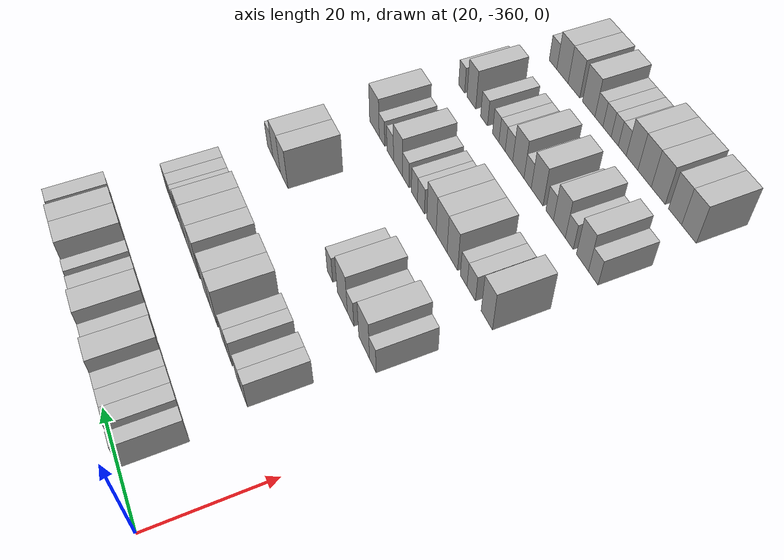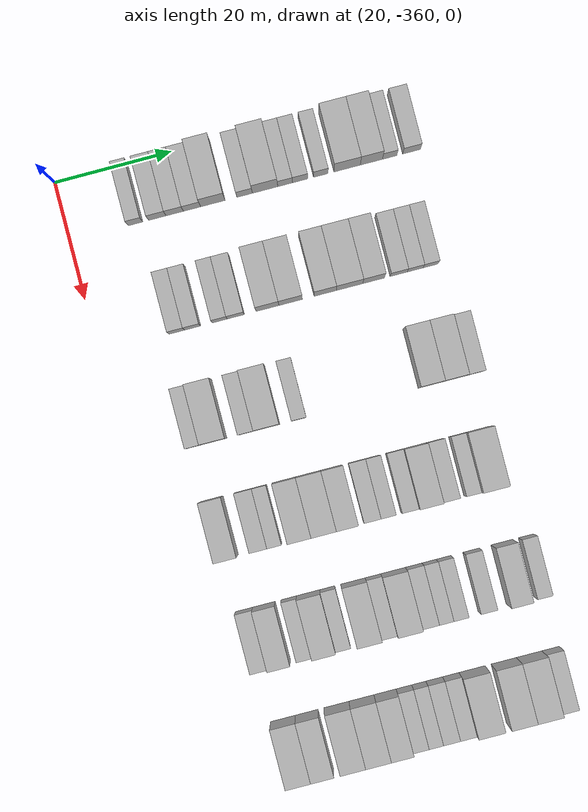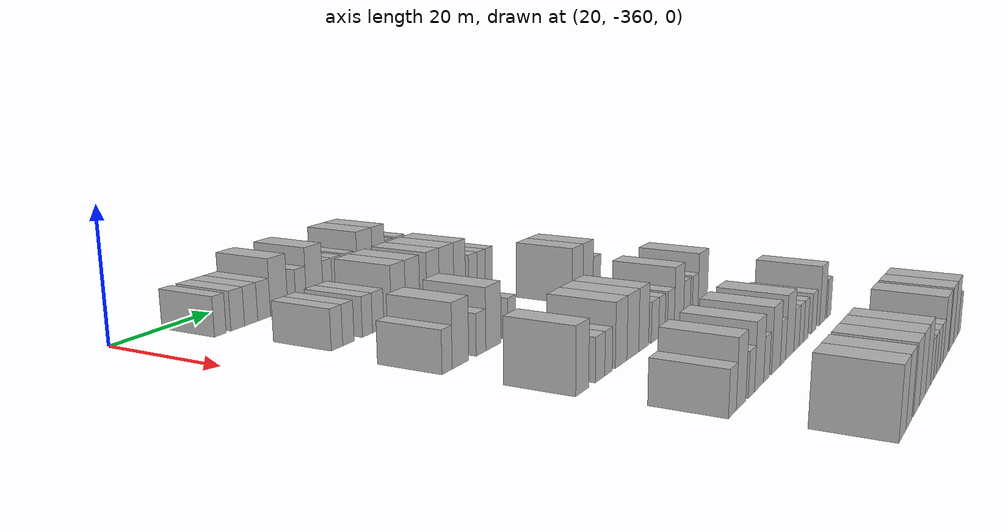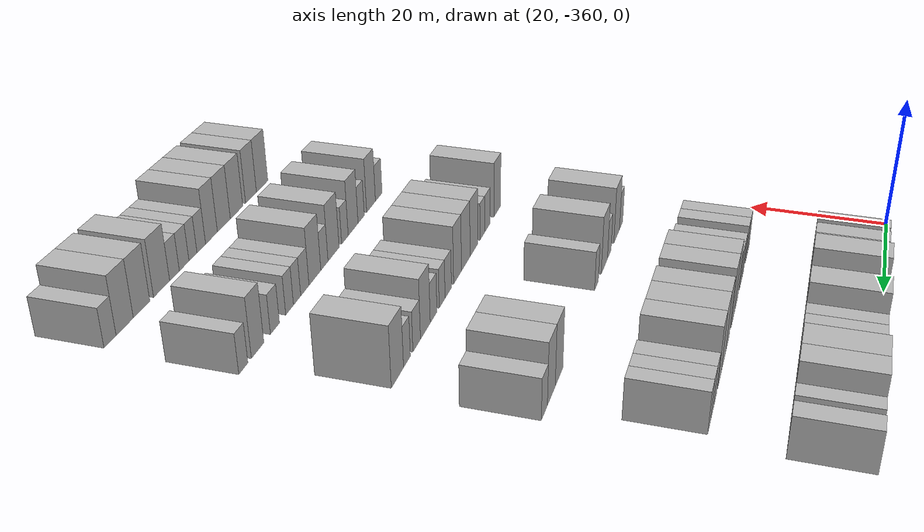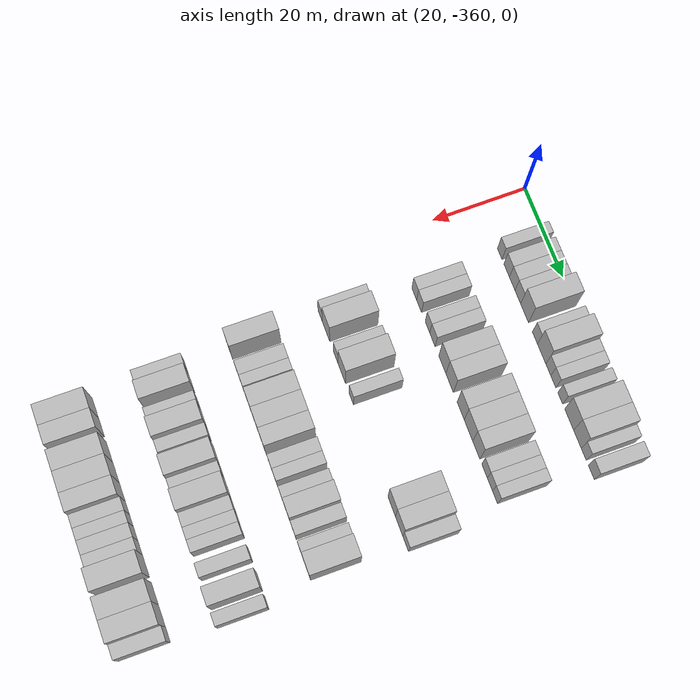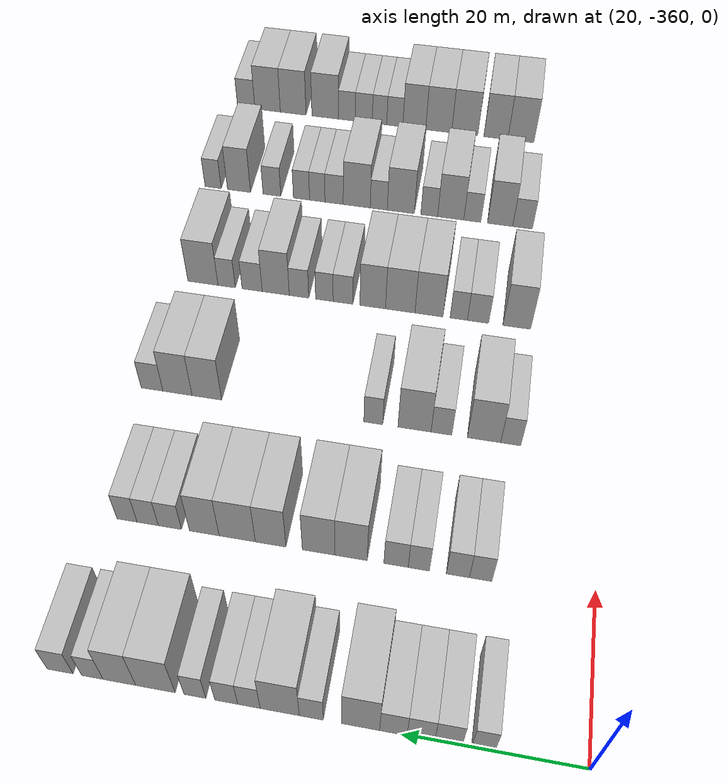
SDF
<sdf version="1.6">
 <world name="default">
  <model name="building_1">
   <static>1</static>
   <pose>25.0000 -348.7660 0 0.000000 0.000000 0.000000</pose>
   <link name="link">
    <pose>0 0 3.00 0 0 0</pose>
    <collision name="collision"><geometry><box><size>10.0000 2.4679 6.0000</size></box></geometry></collision>
    <visual name="visual">
     <cast_shadows>0</cast_shadows>
     <geometry><box><size>10.0000 2.4679 6.0000</size></box></geometry>
     <material>
      <script>
       <uri>model://HANNAS_wall/materials/scripts</uri>
       <uri>model://HANNAS_wall/materials/textures</uri>
       <name>vrc/HANNAS_wall</name>
      </script>
     </material>
    </visual>
   </link>
  </model>
  <model name="building_2">
   <static>1</static>
   <pose>25.0000 -345.0527 0 0.000000 0.000000 0.000000</pose>
   <link name="link">
    <pose>0 0 3.00 0 0 0</pose>
    <collision name="collision"><geometry><box><size>10.0000 2.9588 6.0000</size></box></geometry></collision>
    <visual name="visual">
     <cast_shadows>0</cast_shadows>
     <geometry><box><size>10.0000 2.9588 6.0000</size></box></geometry>
     <material>
      <script>
       <uri>model://HANNAS_wall/materials/scripts</uri>
       <uri>model://HANNAS_wall/materials/textures</uri>
       <name>vrc/HANNAS_wall</name>
      </script>
     </material>
    </visual>
   </link>
  </model>
  <model name="building_3">
   <static>1</static>
   <pose>25.0000 -342.0902 0 0.000000 0.000000 0.000000</pose>
   <link name="link">
    <pose>0 0 3.00 0 0 0</pose>
    <collision name="collision"><geometry><box><size>10.0000 2.9660 6.0000</size></box></geometry></collision>
    <visual name="visual">
     <cast_shadows>0</cast_shadows>
     <geometry><box><size>10.0000 2.9660 6.0000</size></box></geometry>
     <material>
      <script>
       <uri>model://HANNAS_wall/materials/scripts</uri>
       <uri>model://HANNAS_wall/materials/textures</uri>
       <name>vrc/HANNAS_wall</name>
      </script>
     </material>
    </visual>
   </link>
  </model>
  <model name="building_4">
   <static>1</static>
   <pose>25.0000 -339.1338 0 0.000000 0.000000 0.000000</pose>
   <link name="link">
    <pose>0 0 3.00 0 0 0</pose>
    <collision name="collision"><geometry><box><size>10.0000 2.9469 6.0000</size></box></geometry></collision>
    <visual name="visual">
     <cast_shadows>0</cast_shadows>
     <geometry><box><size>10.0000 2.9469 6.0000</size></box></geometry>
     <material>
      <script>
       <uri>model://HANNAS_wall/materials/scripts</uri>
       <uri>model://HANNAS_wall/materials/textures</uri>
       <name>vrc/HANNAS_wall</name>
      </script>
     </material>
    </visual>
   </link>
  </model>
  <model name="building_5">
   <static>1</static>
   <pose>25.0000 -335.5898 0 0.000000 0.000000 0.000000</pose>
   <link name="link">
    <pose>0 0 4.50 0 0 0</pose>
    <collision name="collision"><geometry><box><size>10.0000 4.1409 9.0000</size></box></geometry></collision>
    <visual name="visual">
     <cast_shadows>0</cast_shadows>
     <geometry><box><size>10.0000 4.1409 9.0000</size></box></geometry>
     <material>
      <script>
       <uri>model://HANNAS_wall/materials/scripts</uri>
       <uri>model://HANNAS_wall/materials/textures</uri>
       <name>vrc/HANNAS_wall</name>
      </script>
     </material>
    </visual>
   </link>
  </model>
  <model name="building_6">
   <static>1</static>
   <pose>25.0000 -330.1965 0 0.000000 0.000000 0.000000</pose>
   <link name="link">
    <pose>0 0 3.00 0 0 0</pose>
    <collision name="collision"><geometry><box><size>10.0000 2.6458 6.0000</size></box></geometry></collision>
    <visual name="visual">
     <cast_shadows>0</cast_shadows>
     <geometry><box><size>10.0000 2.6458 6.0000</size></box></geometry>
     <material>
      <script>
       <uri>model://HANNAS_wall/materials/scripts</uri>
       <uri>model://HANNAS_wall/materials/textures</uri>
       <name>vrc/HANNAS_wall</name>
      </script>
     </material>
    </visual>
   </link>
  </model>
  <model name="building_7">
   <static>1</static>
   <pose>25.0000 -326.7133 0 0.000000 0.000000 0.000000</pose>
   <link name="link">
    <pose>0 0 4.50 0 0 0</pose>
    <collision name="collision"><geometry><box><size>10.0000 4.3205 9.0000</size></box></geometry></collision>
    <visual name="visual">
     <cast_shadows>0</cast_shadows>
     <geometry><box><size>10.0000 4.3205 9.0000</size></box></geometry>
     <material>
      <script>
       <uri>model://HANNAS_wall/materials/scripts</uri>
       <uri>model://HANNAS_wall/materials/textures</uri>
       <name>vrc/HANNAS_wall</name>
      </script>
     </material>
    </visual>
   </link>
  </model>
  <model name="building_8">
   <static>1</static>
   <pose>25.0000 -323.3036 0 0.000000 0.000000 0.000000</pose>
   <link name="link">
    <pose>0 0 3.00 0 0 0</pose>
    <collision name="collision"><geometry><box><size>10.0000 2.4989 6.0000</size></box></geometry></collision>
    <visual name="visual">
     <cast_shadows>0</cast_shadows>
     <geometry><box><size>10.0000 2.4989 6.0000</size></box></geometry>
     <material>
      <script>
       <uri>model://HANNAS_wall/materials/scripts</uri>
       <uri>model://HANNAS_wall/materials/textures</uri>
       <name>vrc/HANNAS_wall</name>
      </script>
     </material>
    </visual>
   </link>
  </model>
  <model name="building_9">
   <static>1</static>
   <pose>25.0000 -320.7672 0 0.000000 0.000000 0.000000</pose>
   <link name="link">
    <pose>0 0 3.00 0 0 0</pose>
    <collision name="collision"><geometry><box><size>10.0000 2.5739 6.0000</size></box></geometry></collision>
    <visual name="visual">
     <cast_shadows>0</cast_shadows>
     <geometry><box><size>10.0000 2.5739 6.0000</size></box></geometry>
     <material>
      <script>
       <uri>model://HANNAS_wall/materials/scripts</uri>
       <uri>model://HANNAS_wall/materials/textures</uri>
       <name>vrc/HANNAS_wall</name>
      </script>
     </material>
    </visual>
   </link>
  </model>
  <model name="building_10">
   <static>1</static>
   <pose>25.0000 -317.2470 0 0.000000 0.000000 0.000000</pose>
   <link name="link">
    <pose>0 0 3.00 0 0 0</pose>
    <collision name="collision"><geometry><box><size>10.0000 2.4664 6.0000</size></box></geometry></collision>
    <visual name="visual">
     <cast_shadows>0</cast_shadows>
     <geometry><box><size>10.0000 2.4664 6.0000</size></box></geometry>
     <material>
      <script>
       <uri>model://HANNAS_wall/materials/scripts</uri>
       <uri>model://HANNAS_wall/materials/textures</uri>
       <name>vrc/HANNAS_wall</name>
      </script>
     </material>
    </visual>
   </link>
  </model>
  <model name="building_11">
   <static>1</static>
   <pose>25.0000 -312.7702 0 0.000000 0.000000 0.000000</pose>
   <link name="link">
    <pose>0 0 4.50 0 0 0</pose>
    <collision name="collision"><geometry><box><size>10.0000 4.4872 9.0000</size></box></geometry></collision>
    <visual name="visual">
     <cast_shadows>0</cast_shadows>
     <geometry><box><size>10.0000 4.4872 9.0000</size></box></geometry>
     <material>
      <script>
       <uri>model://HANNAS_wall/materials/scripts</uri>
       <uri>model://HANNAS_wall/materials/textures</uri>
       <name>vrc/HANNAS_wall</name>
      </script>
     </material>
    </visual>
   </link>
  </model>
  <model name="building_12">
   <static>1</static>
   <pose>25.0000 -308.6517 0 0.000000 0.000000 0.000000</pose>
   <link name="link">
    <pose>0 0 4.50 0 0 0</pose>
    <collision name="collision"><geometry><box><size>10.0000 3.7497 9.0000</size></box></geometry></collision>
    <visual name="visual">
     <cast_shadows>0</cast_shadows>
     <geometry><box><size>10.0000 3.7497 9.0000</size></box></geometry>
     <material>
      <script>
       <uri>model://HANNAS_wall/materials/scripts</uri>
       <uri>model://HANNAS_wall/materials/textures</uri>
       <name>vrc/HANNAS_wall</name>
      </script>
     </material>
    </visual>
   </link>
  </model>
  <model name="building_13">
   <static>1</static>
   <pose>25.0000 -305.5434 0 0.000000 0.000000 0.000000</pose>
   <link name="link">
    <pose>0 0 3.00 0 0 0</pose>
    <collision name="collision"><geometry><box><size>10.0000 2.4669 6.0000</size></box></geometry></collision>
    <visual name="visual">
     <cast_shadows>0</cast_shadows>
     <geometry><box><size>10.0000 2.4669 6.0000</size></box></geometry>
     <material>
      <script>
       <uri>model://HANNAS_wall/materials/scripts</uri>
       <uri>model://HANNAS_wall/materials/textures</uri>
       <name>vrc/HANNAS_wall</name>
      </script>
     </material>
    </visual>
   </link>
  </model>
  <model name="building_14">
   <static>1</static>
   <pose>25.0000 -301.8110 0 0.000000 0.000000 0.000000</pose>
   <link name="link">
    <pose>0 0 3.00 0 0 0</pose>
    <collision name="collision"><geometry><box><size>10.0000 2.9979 6.0000</size></box></geometry></collision>
    <visual name="visual">
     <cast_shadows>0</cast_shadows>
     <geometry><box><size>10.0000 2.9979 6.0000</size></box></geometry>
     <material>
      <script>
       <uri>model://HANNAS_wall/materials/scripts</uri>
       <uri>model://HANNAS_wall/materials/textures</uri>
       <name>vrc/HANNAS_wall</name>
      </script>
     </material>
    </visual>
   </link>
  </model>
  <model name="building_178">
   <static>1</static>
   <pose>44.0000 -346.6772 0 0.000000 0.000000 0.000000</pose>
   <link name="link">
    <pose>0 0 3.00 0 0 0</pose>
    <collision name="collision"><geometry><box><size>10.0000 2.6455 6.0000</size></box></geometry></collision>
    <visual name="visual">
     <cast_shadows>0</cast_shadows>
     <geometry><box><size>10.0000 2.6455 6.0000</size></box></geometry>
     <material>
      <script>
       <uri>model://HANNAS_wall/materials/scripts</uri>
       <uri>model://HANNAS_wall/materials/textures</uri>
       <name>vrc/HANNAS_wall</name>
      </script>
     </material>
    </visual>
   </link>
  </model>
  <model name="building_179">
   <static>1</static>
   <pose>44.0000 -343.9953 0 0.000000 0.000000 0.000000</pose>
   <link name="link">
    <pose>0 0 3.00 0 0 0</pose>
    <collision name="collision"><geometry><box><size>10.0000 2.7182 6.0000</size></box></geometry></collision>
    <visual name="visual">
     <cast_shadows>0</cast_shadows>
     <geometry><box><size>10.0000 2.7182 6.0000</size></box></geometry>
     <material>
      <script>
       <uri>model://HANNAS_wall/materials/scripts</uri>
       <uri>model://HANNAS_wall/materials/textures</uri>
       <name>vrc/HANNAS_wall</name>
      </script>
     </material>
    </visual>
   </link>
  </model>
  <model name="building_180">
   <static>1</static>
   <pose>44.0000 -339.3690 0 0.000000 0.000000 0.000000</pose>
   <link name="link">
    <pose>0 0 3.00 0 0 0</pose>
    <collision name="collision"><geometry><box><size>10.0000 2.5345 6.0000</size></box></geometry></collision>
    <visual name="visual">
     <cast_shadows>0</cast_shadows>
     <geometry><box><size>10.0000 2.5345 6.0000</size></box></geometry>
     <material>
      <script>
       <uri>model://HANNAS_wall/materials/scripts</uri>
       <uri>model://HANNAS_wall/materials/textures</uri>
       <name>vrc/HANNAS_wall</name>
      </script>
     </material>
    </visual>
   </link>
  </model>
  <model name="building_181">
   <static>1</static>
   <pose>44.0000 -336.6489 0 0.000000 0.000000 0.000000</pose>
   <link name="link">
    <pose>0 0 3.00 0 0 0</pose>
    <collision name="collision"><geometry><box><size>10.0000 2.9058 6.0000</size></box></geometry></collision>
    <visual name="visual">
     <cast_shadows>0</cast_shadows>
     <geometry><box><size>10.0000 2.9058 6.0000</size></box></geometry>
     <material>
      <script>
       <uri>model://HANNAS_wall/materials/scripts</uri>
       <uri>model://HANNAS_wall/materials/textures</uri>
       <name>vrc/HANNAS_wall</name>
      </script>
     </material>
    </visual>
   </link>
  </model>
  <model name="building_182">
   <static>1</static>
   <pose>44.0000 -331.2538 0 0.000000 0.000000 0.000000</pose>
   <link name="link">
    <pose>0 0 4.50 0 0 0</pose>
    <collision name="collision"><geometry><box><size>10.0000 3.8844 9.0000</size></box></geometry></collision>
    <visual name="visual">
     <cast_shadows>0</cast_shadows>
     <geometry><box><size>10.0000 3.8844 9.0000</size></box></geometry>
     <material>
      <script>
       <uri>model://HANNAS_wall/materials/scripts</uri>
       <uri>model://HANNAS_wall/materials/textures</uri>
       <name>vrc/HANNAS_wall</name>
      </script>
     </material>
    </visual>
   </link>
  </model>
  <model name="building_183">
   <static>1</static>
   <pose>44.0000 -327.3284 0 0.000000 0.000000 0.000000</pose>
   <link name="link">
    <pose>0 0 4.50 0 0 0</pose>
    <collision name="collision"><geometry><box><size>10.0000 3.9663 9.0000</size></box></geometry></collision>
    <visual name="visual">
     <cast_shadows>0</cast_shadows>
     <geometry><box><size>10.0000 3.9663 9.0000</size></box></geometry>
     <material>
      <script>
       <uri>model://HANNAS_wall/materials/scripts</uri>
       <uri>model://HANNAS_wall/materials/textures</uri>
       <name>vrc/HANNAS_wall</name>
      </script>
     </material>
    </visual>
   </link>
  </model>
  <model name="building_184">
   <static>1</static>
   <pose>44.0000 -321.4629 0 0.000000 0.000000 0.000000</pose>
   <link name="link">
    <pose>0 0 4.50 0 0 0</pose>
    <collision name="collision"><geometry><box><size>10.0000 3.7648 9.0000</size></box></geometry></collision>
    <visual name="visual">
     <cast_shadows>0</cast_shadows>
     <geometry><box><size>10.0000 3.7648 9.0000</size></box></geometry>
     <material>
      <script>
       <uri>model://HANNAS_wall/materials/scripts</uri>
       <uri>model://HANNAS_wall/materials/textures</uri>
       <name>vrc/HANNAS_wall</name>
      </script>
     </material>
    </visual>
   </link>
  </model>
  <model name="building_185">
   <static>1</static>
   <pose>44.0000 -317.3448 0 0.000000 0.000000 0.000000</pose>
   <link name="link">
    <pose>0 0 4.50 0 0 0</pose>
    <collision name="collision"><geometry><box><size>10.0000 4.4713 9.0000</size></box></geometry></collision>
    <visual name="visual">
     <cast_shadows>0</cast_shadows>
     <geometry><box><size>10.0000 4.4713 9.0000</size></box></geometry>
     <material>
      <script>
       <uri>model://HANNAS_wall/materials/scripts</uri>
       <uri>model://HANNAS_wall/materials/textures</uri>
       <name>vrc/HANNAS_wall</name>
      </script>
     </material>
    </visual>
   </link>
  </model>
  <model name="building_186">
   <static>1</static>
   <pose>44.0000 -313.2630 0 0.000000 0.000000 0.000000</pose>
   <link name="link">
    <pose>0 0 4.50 0 0 0</pose>
    <collision name="collision"><geometry><box><size>10.0000 3.6924 9.0000</size></box></geometry></collision>
    <visual name="visual">
     <cast_shadows>0</cast_shadows>
     <geometry><box><size>10.0000 3.6924 9.0000</size></box></geometry>
     <material>
      <script>
       <uri>model://HANNAS_wall/materials/scripts</uri>
       <uri>model://HANNAS_wall/materials/textures</uri>
       <name>vrc/HANNAS_wall</name>
      </script>
     </material>
    </visual>
   </link>
  </model>
  <model name="building_187">
   <static>1</static>
   <pose>44.0000 -308.9660 0 0.000000 0.000000 0.000000</pose>
   <link name="link">
    <pose>0 0 3.00 0 0 0</pose>
    <collision name="collision"><geometry><box><size>10.0000 2.9017 6.0000</size></box></geometry></collision>
    <visual name="visual">
     <cast_shadows>0</cast_shadows>
     <geometry><box><size>10.0000 2.9017 6.0000</size></box></geometry>
     <material>
      <script>
       <uri>model://HANNAS_wall/materials/scripts</uri>
       <uri>model://HANNAS_wall/materials/textures</uri>
       <name>vrc/HANNAS_wall</name>
      </script>
     </material>
    </visual>
   </link>
  </model>
  <model name="building_188">
   <static>1</static>
   <pose>44.0000 -306.1753 0 0.000000 0.000000 0.000000</pose>
   <link name="link">
    <pose>0 0 3.00 0 0 0</pose>
    <collision name="collision"><geometry><box><size>10.0000 2.6796 6.0000</size></box></geometry></collision>
    <visual name="visual">
     <cast_shadows>0</cast_shadows>
     <geometry><box><size>10.0000 2.6796 6.0000</size></box></geometry>
     <material>
      <script>
       <uri>model://HANNAS_wall/materials/scripts</uri>
       <uri>model://HANNAS_wall/materials/textures</uri>
       <name>vrc/HANNAS_wall</name>
      </script>
     </material>
    </visual>
   </link>
  </model>
  <model name="building_189">
   <static>1</static>
   <pose>44.0000 -303.5595 0 0.000000 0.000000 0.000000</pose>
   <link name="link">
    <pose>0 0 3.00 0 0 0</pose>
    <collision name="collision"><geometry><box><size>10.0000 2.5520 6.0000</size></box></geometry></collision>
    <visual name="visual">
     <cast_shadows>0</cast_shadows>
     <geometry><box><size>10.0000 2.5520 6.0000</size></box></geometry>
     <material>
      <script>
       <uri>model://HANNAS_wall/materials/scripts</uri>
       <uri>model://HANNAS_wall/materials/textures</uri>
       <name>vrc/HANNAS_wall</name>
      </script>
     </material>
    </visual>
   </link>
  </model>
  <model name="building_346">
   <static>1</static>
   <pose>63.0000 -348.7153 0 0.000000 0.000000 0.000000</pose>
   <link name="link">
    <pose>0 0 3.00 0 0 0</pose>
    <collision name="collision"><geometry><box><size>10.0000 2.5694 6.0000</size></box></geometry></collision>
    <visual name="visual">
     <cast_shadows>0</cast_shadows>
     <geometry><box><size>10.0000 2.5694 6.0000</size></box></geometry>
     <material>
      <script>
       <uri>model://HANNAS_wall/materials/scripts</uri>
       <uri>model://HANNAS_wall/materials/textures</uri>
       <name>vrc/HANNAS_wall</name>
      </script>
     </material>
    </visual>
   </link>
  </model>
  <model name="building_347">
   <static>1</static>
   <pose>63.0000 -345.2853 0 0.000000 0.000000 0.000000</pose>
   <link name="link">
    <pose>0 0 4.50 0 0 0</pose>
    <collision name="collision"><geometry><box><size>10.0000 4.2904 9.0000</size></box></geometry></collision>
    <visual name="visual">
     <cast_shadows>0</cast_shadows>
     <geometry><box><size>10.0000 4.2904 9.0000</size></box></geometry>
     <material>
      <script>
       <uri>model://HANNAS_wall/materials/scripts</uri>
       <uri>model://HANNAS_wall/materials/textures</uri>
       <name>vrc/HANNAS_wall</name>
      </script>
     </material>
    </visual>
   </link>
  </model>
  <model name="building_348">
   <static>1</static>
   <pose>63.0000 -339.7916 0 0.000000 0.000000 0.000000</pose>
   <link name="link">
    <pose>0 0 3.00 0 0 0</pose>
    <collision name="collision"><geometry><box><size>10.0000 2.6970 6.0000</size></box></geometry></collision>
    <visual name="visual">
     <cast_shadows>0</cast_shadows>
     <geometry><box><size>10.0000 2.6970 6.0000</size></box></geometry>
     <material>
      <script>
       <uri>model://HANNAS_wall/materials/scripts</uri>
       <uri>model://HANNAS_wall/materials/textures</uri>
       <name>vrc/HANNAS_wall</name>
      </script>
     </material>
    </visual>
   </link>
  </model>
  <model name="building_349">
   <static>1</static>
   <pose>63.0000 -336.2821 0 0.000000 0.000000 0.000000</pose>
   <link name="link">
    <pose>0 0 4.50 0 0 0</pose>
    <collision name="collision"><geometry><box><size>10.0000 4.3220 9.0000</size></box></geometry></collision>
    <visual name="visual">
     <cast_shadows>0</cast_shadows>
     <geometry><box><size>10.0000 4.3220 9.0000</size></box></geometry>
     <material>
      <script>
       <uri>model://HANNAS_wall/materials/scripts</uri>
       <uri>model://HANNAS_wall/materials/textures</uri>
       <name>vrc/HANNAS_wall</name>
      </script>
     </material>
    </visual>
   </link>
  </model>
  <model name="building_350">
   <static>1</static>
   <pose>63.0000 -330.8788 0 0.000000 0.000000 0.000000</pose>
   <link name="link">
    <pose>0 0 3.00 0 0 0</pose>
    <collision name="collision"><geometry><box><size>10.0000 2.4847 6.0000</size></box></geometry></collision>
    <visual name="visual">
     <cast_shadows>0</cast_shadows>
     <geometry><box><size>10.0000 2.4847 6.0000</size></box></geometry>
     <material>
      <script>
       <uri>model://HANNAS_wall/materials/scripts</uri>
       <uri>model://HANNAS_wall/materials/textures</uri>
       <name>vrc/HANNAS_wall</name>
      </script>
     </material>
    </visual>
   </link>
  </model>
  <model name="building_351">
   <static>1</static>
   <pose>63.0000 -308.5785 0 0.000000 0.000000 0.000000</pose>
   <link name="link">
    <pose>0 0 4.50 0 0 0</pose>
    <collision name="collision"><geometry><box><size>10.0000 4.0386 9.0000</size></box></geometry></collision>
    <visual name="visual">
     <cast_shadows>0</cast_shadows>
     <geometry><box><size>10.0000 4.0386 9.0000</size></box></geometry>
     <material>
      <script>
       <uri>model://HANNAS_wall/materials/scripts</uri>
       <uri>model://HANNAS_wall/materials/textures</uri>
       <name>vrc/HANNAS_wall</name>
      </script>
     </material>
    </visual>
   </link>
  </model>
  <model name="building_352">
   <static>1</static>
   <pose>63.0000 -304.5586 0 0.000000 0.000000 0.000000</pose>
   <link name="link">
    <pose>0 0 4.50 0 0 0</pose>
    <collision name="collision"><geometry><box><size>10.0000 4.0012 9.0000</size></box></geometry></collision>
    <visual name="visual">
     <cast_shadows>0</cast_shadows>
     <geometry><box><size>10.0000 4.0012 9.0000</size></box></geometry>
     <material>
      <script>
       <uri>model://HANNAS_wall/materials/scripts</uri>
       <uri>model://HANNAS_wall/materials/textures</uri>
       <name>vrc/HANNAS_wall</name>
      </script>
     </material>
    </visual>
   </link>
  </model>
  <model name="building_353">
   <static>1</static>
   <pose>63.0000 -301.0593 0 0.000000 0.000000 0.000000</pose>
   <link name="link">
    <pose>0 0 3.00 0 0 0</pose>
    <collision name="collision"><geometry><box><size>10.0000 2.9973 6.0000</size></box></geometry></collision>
    <visual name="visual">
     <cast_shadows>0</cast_shadows>
     <geometry><box><size>10.0000 2.9973 6.0000</size></box></geometry>
     <material>
      <script>
       <uri>model://HANNAS_wall/materials/scripts</uri>
       <uri>model://HANNAS_wall/materials/textures</uri>
       <name>vrc/HANNAS_wall</name>
      </script>
     </material>
    </visual>
   </link>
  </model>
  <model name="building_521">
   <static>1</static>
   <pose>82.0000 -348.0784 0 0.000000 0.000000 0.000000</pose>
   <link name="link">
    <pose>0 0 4.50 0 0 0</pose>
    <collision name="collision"><geometry><box><size>10.0000 3.8432 9.0000</size></box></geometry></collision>
    <visual name="visual">
     <cast_shadows>0</cast_shadows>
     <geometry><box><size>10.0000 3.8432 9.0000</size></box></geometry>
     <material>
      <script>
       <uri>model://HANNAS_wall/materials/scripts</uri>
       <uri>model://HANNAS_wall/materials/textures</uri>
       <name>vrc/HANNAS_wall</name>
      </script>
     </material>
    </visual>
   </link>
  </model>
  <model name="building_522">
   <static>1</static>
   <pose>82.0000 -342.6615 0 0.000000 0.000000 0.000000</pose>
   <link name="link">
    <pose>0 0 3.00 0 0 0</pose>
    <collision name="collision"><geometry><box><size>10.0000 2.9906 6.0000</size></box></geometry></collision>
    <visual name="visual">
     <cast_shadows>0</cast_shadows>
     <geometry><box><size>10.0000 2.9906 6.0000</size></box></geometry>
     <material>
      <script>
       <uri>model://HANNAS_wall/materials/scripts</uri>
       <uri>model://HANNAS_wall/materials/textures</uri>
       <name>vrc/HANNAS_wall</name>
      </script>
     </material>
    </visual>
   </link>
  </model>
  <model name="building_523">
   <static>1</static>
   <pose>82.0000 -339.9555 0 0.000000 0.000000 0.000000</pose>
   <link name="link">
    <pose>0 0 3.00 0 0 0</pose>
    <collision name="collision"><geometry><box><size>10.0000 2.4214 6.0000</size></box></geometry></collision>
    <visual name="visual">
     <cast_shadows>0</cast_shadows>
     <geometry><box><size>10.0000 2.4214 6.0000</size></box></geometry>
     <material>
      <script>
       <uri>model://HANNAS_wall/materials/scripts</uri>
       <uri>model://HANNAS_wall/materials/textures</uri>
       <name>vrc/HANNAS_wall</name>
      </script>
     </material>
    </visual>
   </link>
  </model>
  <model name="building_524">
   <static>1</static>
   <pose>82.0000 -335.7631 0 0.000000 0.000000 0.000000</pose>
   <link name="link">
    <pose>0 0 4.50 0 0 0</pose>
    <collision name="collision"><geometry><box><size>10.0000 3.9634 9.0000</size></box></geometry></collision>
    <visual name="visual">
     <cast_shadows>0</cast_shadows>
     <geometry><box><size>10.0000 3.9634 9.0000</size></box></geometry>
     <material>
      <script>
       <uri>model://HANNAS_wall/materials/scripts</uri>
       <uri>model://HANNAS_wall/materials/textures</uri>
       <name>vrc/HANNAS_wall</name>
      </script>
     </material>
    </visual>
   </link>
  </model>
  <model name="building_525">
   <static>1</static>
   <pose>82.0000 -331.6801 0 0.000000 0.000000 0.000000</pose>
   <link name="link">
    <pose>0 0 4.50 0 0 0</pose>
    <collision name="collision"><geometry><box><size>10.0000 4.2025 9.0000</size></box></geometry></collision>
    <visual name="visual">
     <cast_shadows>0</cast_shadows>
     <geometry><box><size>10.0000 4.2025 9.0000</size></box></geometry>
     <material>
      <script>
       <uri>model://HANNAS_wall/materials/scripts</uri>
       <uri>model://HANNAS_wall/materials/textures</uri>
       <name>vrc/HANNAS_wall</name>
      </script>
     </material>
    </visual>
   </link>
  </model>
  <model name="building_526">
   <static>1</static>
   <pose>82.0000 -327.7458 0 0.000000 0.000000 0.000000</pose>
   <link name="link">
    <pose>0 0 4.50 0 0 0</pose>
    <collision name="collision"><geometry><box><size>10.0000 3.6663 9.0000</size></box></geometry></collision>
    <visual name="visual">
     <cast_shadows>0</cast_shadows>
     <geometry><box><size>10.0000 3.6663 9.0000</size></box></geometry>
     <material>
      <script>
       <uri>model://HANNAS_wall/materials/scripts</uri>
       <uri>model://HANNAS_wall/materials/textures</uri>
       <name>vrc/HANNAS_wall</name>
      </script>
     </material>
    </visual>
   </link>
  </model>
  <model name="building_527">
   <static>1</static>
   <pose>82.0000 -323.4887 0 0.000000 0.000000 0.000000</pose>
   <link name="link">
    <pose>0 0 3.00 0 0 0</pose>
    <collision name="collision"><geometry><box><size>10.0000 2.8479 6.0000</size></box></geometry></collision>
    <visual name="visual">
     <cast_shadows>0</cast_shadows>
     <geometry><box><size>10.0000 2.8479 6.0000</size></box></geometry>
     <material>
      <script>
       <uri>model://HANNAS_wall/materials/scripts</uri>
       <uri>model://HANNAS_wall/materials/textures</uri>
       <name>vrc/HANNAS_wall</name>
      </script>
     </material>
    </visual>
   </link>
  </model>
  <model name="building_528">
   <static>1</static>
   <pose>82.0000 -320.7982 0 0.000000 0.000000 0.000000</pose>
   <link name="link">
    <pose>0 0 3.00 0 0 0</pose>
    <collision name="collision"><geometry><box><size>10.0000 2.5330 6.0000</size></box></geometry></collision>
    <visual name="visual">
     <cast_shadows>0</cast_shadows>
     <geometry><box><size>10.0000 2.5330 6.0000</size></box></geometry>
     <material>
      <script>
       <uri>model://HANNAS_wall/materials/scripts</uri>
       <uri>model://HANNAS_wall/materials/textures</uri>
       <name>vrc/HANNAS_wall</name>
      </script>
     </material>
    </visual>
   </link>
  </model>
  <model name="building_529">
   <static>1</static>
   <pose>82.0000 -317.1169 0 0.000000 0.000000 0.000000</pose>
   <link name="link">
    <pose>0 0 3.00 0 0 0</pose>
    <collision name="collision"><geometry><box><size>10.0000 2.8295 6.0000</size></box></geometry></collision>
    <visual name="visual">
     <cast_shadows>0</cast_shadows>
     <geometry><box><size>10.0000 2.8295 6.0000</size></box></geometry>
     <material>
      <script>
       <uri>model://HANNAS_wall/materials/scripts</uri>
       <uri>model://HANNAS_wall/materials/textures</uri>
       <name>vrc/HANNAS_wall</name>
      </script>
     </material>
    </visual>
   </link>
  </model>
  <model name="building_530">
   <static>1</static>
   <pose>82.0000 -313.7220 0 0.000000 0.000000 0.000000</pose>
   <link name="link">
    <pose>0 0 4.50 0 0 0</pose>
    <collision name="collision"><geometry><box><size>10.0000 3.9603 9.0000</size></box></geometry></collision>
    <visual name="visual">
     <cast_shadows>0</cast_shadows>
     <geometry><box><size>10.0000 3.9603 9.0000</size></box></geometry>
     <material>
      <script>
       <uri>model://HANNAS_wall/materials/scripts</uri>
       <uri>model://HANNAS_wall/materials/textures</uri>
       <name>vrc/HANNAS_wall</name>
      </script>
     </material>
    </visual>
   </link>
  </model>
  <model name="building_531">
   <static>1</static>
   <pose>82.0000 -310.2654 0 0.000000 0.000000 0.000000</pose>
   <link name="link">
    <pose>0 0 3.00 0 0 0</pose>
    <collision name="collision"><geometry><box><size>10.0000 2.9529 6.0000</size></box></geometry></collision>
    <visual name="visual">
     <cast_shadows>0</cast_shadows>
     <geometry><box><size>10.0000 2.9529 6.0000</size></box></geometry>
     <material>
      <script>
       <uri>model://HANNAS_wall/materials/scripts</uri>
       <uri>model://HANNAS_wall/materials/textures</uri>
       <name>vrc/HANNAS_wall</name>
      </script>
     </material>
    </visual>
   </link>
  </model>
  <model name="building_532">
   <static>1</static>
   <pose>82.0000 -306.5099 0 0.000000 0.000000 0.000000</pose>
   <link name="link">
    <pose>0 0 3.00 0 0 0</pose>
    <collision name="collision"><geometry><box><size>10.0000 2.5581 6.0000</size></box></geometry></collision>
    <visual name="visual">
     <cast_shadows>0</cast_shadows>
     <geometry><box><size>10.0000 2.5581 6.0000</size></box></geometry>
     <material>
      <script>
       <uri>model://HANNAS_wall/materials/scripts</uri>
       <uri>model://HANNAS_wall/materials/textures</uri>
       <name>vrc/HANNAS_wall</name>
      </script>
     </material>
    </visual>
   </link>
  </model>
  <model name="building_533">
   <static>1</static>
   <pose>82.0000 -303.0000 0 0.000000 0.000000 0.000000</pose>
   <link name="link">
    <pose>0 0 4.50 0 0 0</pose>
    <collision name="collision"><geometry><box><size>10.0000 4.4616 9.0000</size></box></geometry></collision>
    <visual name="visual">
     <cast_shadows>0</cast_shadows>
     <geometry><box><size>10.0000 4.4616 9.0000</size></box></geometry>
     <material>
      <script>
       <uri>model://HANNAS_wall/materials/scripts</uri>
       <uri>model://HANNAS_wall/materials/textures</uri>
       <name>vrc/HANNAS_wall</name>
      </script>
     </material>
    </visual>
   </link>
  </model>
  <model name="building_695">
   <static>1</static>
   <pose>101.0000 -347.5220 0 0.000000 0.000000 0.000000</pose>
   <link name="link">
    <pose>0 0 3.00 0 0 0</pose>
    <collision name="collision"><geometry><box><size>10.0000 2.9560 6.0000</size></box></geometry></collision>
    <visual name="visual">
     <cast_shadows>0</cast_shadows>
     <geometry><box><size>10.0000 2.9560 6.0000</size></box></geometry>
     <material>
      <script>
       <uri>model://HANNAS_wall/materials/scripts</uri>
       <uri>model://HANNAS_wall/materials/textures</uri>
       <name>vrc/HANNAS_wall</name>
      </script>
     </material>
    </visual>
   </link>
  </model>
  <model name="building_696">
   <static>1</static>
   <pose>101.0000 -344.1451 0 0.000000 0.000000 0.000000</pose>
   <link name="link">
    <pose>0 0 4.50 0 0 0</pose>
    <collision name="collision"><geometry><box><size>10.0000 3.7977 9.0000</size></box></geometry></collision>
    <visual name="visual">
     <cast_shadows>0</cast_shadows>
     <geometry><box><size>10.0000 3.7977 9.0000</size></box></geometry>
     <material>
      <script>
       <uri>model://HANNAS_wall/materials/scripts</uri>
       <uri>model://HANNAS_wall/materials/textures</uri>
       <name>vrc/HANNAS_wall</name>
      </script>
     </material>
    </visual>
   </link>
  </model>
  <model name="building_697">
   <static>1</static>
   <pose>101.0000 -339.9489 0 0.000000 0.000000 0.000000</pose>
   <link name="link">
    <pose>0 0 3.00 0 0 0</pose>
    <collision name="collision"><geometry><box><size>10.0000 2.5948 6.0000</size></box></geometry></collision>
    <visual name="visual">
     <cast_shadows>0</cast_shadows>
     <geometry><box><size>10.0000 2.5948 6.0000</size></box></geometry>
     <material>
      <script>
       <uri>model://HANNAS_wall/materials/scripts</uri>
       <uri>model://HANNAS_wall/materials/textures</uri>
       <name>vrc/HANNAS_wall</name>
      </script>
     </material>
    </visual>
   </link>
  </model>
  <model name="building_698">
   <static>1</static>
   <pose>101.0000 -336.6613 0 0.000000 0.000000 0.000000</pose>
   <link name="link">
    <pose>0 0 4.50 0 0 0</pose>
    <collision name="collision"><geometry><box><size>10.0000 3.9804 9.0000</size></box></geometry></collision>
    <visual name="visual">
     <cast_shadows>0</cast_shadows>
     <geometry><box><size>10.0000 3.9804 9.0000</size></box></geometry>
     <material>
      <script>
       <uri>model://HANNAS_wall/materials/scripts</uri>
       <uri>model://HANNAS_wall/materials/textures</uri>
       <name>vrc/HANNAS_wall</name>
      </script>
     </material>
    </visual>
   </link>
  </model>
  <model name="building_699">
   <static>1</static>
   <pose>101.0000 -333.3908 0 0.000000 0.000000 0.000000</pose>
   <link name="link">
    <pose>0 0 3.00 0 0 0</pose>
    <collision name="collision"><geometry><box><size>10.0000 2.5606 6.0000</size></box></geometry></collision>
    <visual name="visual">
     <cast_shadows>0</cast_shadows>
     <geometry><box><size>10.0000 2.5606 6.0000</size></box></geometry>
     <material>
      <script>
       <uri>model://HANNAS_wall/materials/scripts</uri>
       <uri>model://HANNAS_wall/materials/textures</uri>
       <name>vrc/HANNAS_wall</name>
      </script>
     </material>
    </visual>
   </link>
  </model>
  <model name="building_700">
   <static>1</static>
   <pose>101.0000 -329.0236 0 0.000000 0.000000 0.000000</pose>
   <link name="link">
    <pose>0 0 4.50 0 0 0</pose>
    <collision name="collision"><geometry><box><size>10.0000 4.1738 9.0000</size></box></geometry></collision>
    <visual name="visual">
     <cast_shadows>0</cast_shadows>
     <geometry><box><size>10.0000 4.1738 9.0000</size></box></geometry>
     <material>
      <script>
       <uri>model://HANNAS_wall/materials/scripts</uri>
       <uri>model://HANNAS_wall/materials/textures</uri>
       <name>vrc/HANNAS_wall</name>
      </script>
     </material>
    </visual>
   </link>
  </model>
  <model name="building_701">
   <static>1</static>
   <pose>101.0000 -325.6257 0 0.000000 0.000000 0.000000</pose>
   <link name="link">
    <pose>0 0 3.00 0 0 0</pose>
    <collision name="collision"><geometry><box><size>10.0000 2.6220 6.0000</size></box></geometry></collision>
    <visual name="visual">
     <cast_shadows>0</cast_shadows>
     <geometry><box><size>10.0000 2.6220 6.0000</size></box></geometry>
     <material>
      <script>
       <uri>model://HANNAS_wall/materials/scripts</uri>
       <uri>model://HANNAS_wall/materials/textures</uri>
       <name>vrc/HANNAS_wall</name>
      </script>
     </material>
    </visual>
   </link>
  </model>
  <model name="building_702">
   <static>1</static>
   <pose>101.0000 -322.2133 0 0.000000 0.000000 0.000000</pose>
   <link name="link">
    <pose>0 0 4.50 0 0 0</pose>
    <collision name="collision"><geometry><box><size>10.0000 4.2028 9.0000</size></box></geometry></collision>
    <visual name="visual">
     <cast_shadows>0</cast_shadows>
     <geometry><box><size>10.0000 4.2028 9.0000</size></box></geometry>
     <material>
      <script>
       <uri>model://HANNAS_wall/materials/scripts</uri>
       <uri>model://HANNAS_wall/materials/textures</uri>
       <name>vrc/HANNAS_wall</name>
      </script>
     </material>
    </visual>
   </link>
  </model>
  <model name="building_703">
   <static>1</static>
   <pose>101.0000 -318.6952 0 0.000000 0.000000 0.000000</pose>
   <link name="link">
    <pose>0 0 3.00 0 0 0</pose>
    <collision name="collision"><geometry><box><size>10.0000 2.8336 6.0000</size></box></geometry></collision>
    <visual name="visual">
     <cast_shadows>0</cast_shadows>
     <geometry><box><size>10.0000 2.8336 6.0000</size></box></geometry>
     <material>
      <script>
       <uri>model://HANNAS_wall/materials/scripts</uri>
       <uri>model://HANNAS_wall/materials/textures</uri>
       <name>vrc/HANNAS_wall</name>
      </script>
     </material>
    </visual>
   </link>
  </model>
  <model name="building_704">
   <static>1</static>
   <pose>101.0000 -316.0688 0 0.000000 0.000000 0.000000</pose>
   <link name="link">
    <pose>0 0 3.00 0 0 0</pose>
    <collision name="collision"><geometry><box><size>10.0000 2.4192 6.0000</size></box></geometry></collision>
    <visual name="visual">
     <cast_shadows>0</cast_shadows>
     <geometry><box><size>10.0000 2.4192 6.0000</size></box></geometry>
     <material>
      <script>
       <uri>model://HANNAS_wall/materials/scripts</uri>
       <uri>model://HANNAS_wall/materials/textures</uri>
       <name>vrc/HANNAS_wall</name>
      </script>
     </material>
    </visual>
   </link>
  </model>
  <model name="building_705">
   <static>1</static>
   <pose>101.0000 -313.5967 0 0.000000 0.000000 0.000000</pose>
   <link name="link">
    <pose>0 0 3.00 0 0 0</pose>
    <collision name="collision"><geometry><box><size>10.0000 2.5249 6.0000</size></box></geometry></collision>
    <visual name="visual">
     <cast_shadows>0</cast_shadows>
     <geometry><box><size>10.0000 2.5249 6.0000</size></box></geometry>
     <material>
      <script>
       <uri>model://HANNAS_wall/materials/scripts</uri>
       <uri>model://HANNAS_wall/materials/textures</uri>
       <name>vrc/HANNAS_wall</name>
      </script>
     </material>
    </visual>
   </link>
  </model>
  <model name="building_706">
   <static>1</static>
   <pose>101.0000 -308.9355 0 0.000000 0.000000 0.000000</pose>
   <link name="link">
    <pose>0 0 3.00 0 0 0</pose>
    <collision name="collision"><geometry><box><size>10.0000 2.7974 6.0000</size></box></geometry></collision>
    <visual name="visual">
     <cast_shadows>0</cast_shadows>
     <geometry><box><size>10.0000 2.7974 6.0000</size></box></geometry>
     <material>
      <script>
       <uri>model://HANNAS_wall/materials/scripts</uri>
       <uri>model://HANNAS_wall/materials/textures</uri>
       <name>vrc/HANNAS_wall</name>
      </script>
     </material>
    </visual>
   </link>
  </model>
  <model name="building_707">
   <static>1</static>
   <pose>101.0000 -303.7037 0 0.000000 0.000000 0.000000</pose>
   <link name="link">
    <pose>0 0 4.50 0 0 0</pose>
    <collision name="collision"><geometry><box><size>10.0000 3.6664 9.0000</size></box></geometry></collision>
    <visual name="visual">
     <cast_shadows>0</cast_shadows>
     <geometry><box><size>10.0000 3.6664 9.0000</size></box></geometry>
     <material>
      <script>
       <uri>model://HANNAS_wall/materials/scripts</uri>
       <uri>model://HANNAS_wall/materials/textures</uri>
       <name>vrc/HANNAS_wall</name>
      </script>
     </material>
    </visual>
   </link>
  </model>
  <model name="building_708">
   <static>1</static>
   <pose>101.0000 -299.5838 0 0.000000 0.000000 0.000000</pose>
   <link name="link">
    <pose>0 0 3.00 0 0 0</pose>
    <collision name="collision"><geometry><box><size>10.0000 2.5733 6.0000</size></box></geometry></collision>
    <visual name="visual">
     <cast_shadows>0</cast_shadows>
     <geometry><box><size>10.0000 2.5733 6.0000</size></box></geometry>
     <material>
      <script>
       <uri>model://HANNAS_wall/materials/scripts</uri>
       <uri>model://HANNAS_wall/materials/textures</uri>
       <name>vrc/HANNAS_wall</name>
      </script>
     </material>
    </visual>
   </link>
  </model>
  <model name="building_864">
   <static>1</static>
   <pose>120.0000 -345.8935 0 0.000000 0.000000 0.000000</pose>
   <link name="link">
    <pose>0 0 4.50 0 0 0</pose>
    <collision name="collision"><geometry><box><size>10.0000 4.2129 9.0000</size></box></geometry></collision>
    <visual name="visual">
     <cast_shadows>0</cast_shadows>
     <geometry><box><size>10.0000 4.2129 9.0000</size></box></geometry>
     <material>
      <script>
       <uri>model://HANNAS_wall/materials/scripts</uri>
       <uri>model://HANNAS_wall/materials/textures</uri>
       <name>vrc/HANNAS_wall</name>
      </script>
     </material>
    </visual>
   </link>
  </model>
  <model name="building_865">
   <static>1</static>
   <pose>120.0000 -341.8499 0 0.000000 0.000000 0.000000</pose>
   <link name="link">
    <pose>0 0 4.50 0 0 0</pose>
    <collision name="collision"><geometry><box><size>10.0000 3.8744 9.0000</size></box></geometry></collision>
    <visual name="visual">
     <cast_shadows>0</cast_shadows>
     <geometry><box><size>10.0000 3.8744 9.0000</size></box></geometry>
     <material>
      <script>
       <uri>model://HANNAS_wall/materials/scripts</uri>
       <uri>model://HANNAS_wall/materials/textures</uri>
       <name>vrc/HANNAS_wall</name>
      </script>
     </material>
    </visual>
   </link>
  </model>
  <model name="building_866">
   <static>1</static>
   <pose>120.0000 -336.7861 0 0.000000 0.000000 0.000000</pose>
   <link name="link">
    <pose>0 0 4.50 0 0 0</pose>
    <collision name="collision"><geometry><box><size>10.0000 4.2532 9.0000</size></box></geometry></collision>
    <visual name="visual">
     <cast_shadows>0</cast_shadows>
     <geometry><box><size>10.0000 4.2532 9.0000</size></box></geometry>
     <material>
      <script>
       <uri>model://HANNAS_wall/materials/scripts</uri>
       <uri>model://HANNAS_wall/materials/textures</uri>
       <name>vrc/HANNAS_wall</name>
      </script>
     </material>
    </visual>
   </link>
  </model>
  <model name="building_867">
   <static>1</static>
   <pose>120.0000 -332.5306 0 0.000000 0.000000 0.000000</pose>
   <link name="link">
    <pose>0 0 4.50 0 0 0</pose>
    <collision name="collision"><geometry><box><size>10.0000 4.2578 9.0000</size></box></geometry></collision>
    <visual name="visual">
     <cast_shadows>0</cast_shadows>
     <geometry><box><size>10.0000 4.2578 9.0000</size></box></geometry>
     <material>
      <script>
       <uri>model://HANNAS_wall/materials/scripts</uri>
       <uri>model://HANNAS_wall/materials/textures</uri>
       <name>vrc/HANNAS_wall</name>
      </script>
     </material>
    </visual>
   </link>
  </model>
  <model name="building_868">
   <static>1</static>
   <pose>120.0000 -328.5201 0 0.000000 0.000000 0.000000</pose>
   <link name="link">
    <pose>0 0 4.50 0 0 0</pose>
    <collision name="collision"><geometry><box><size>10.0000 3.7631 9.0000</size></box></geometry></collision>
    <visual name="visual">
     <cast_shadows>0</cast_shadows>
     <geometry><box><size>10.0000 3.7631 9.0000</size></box></geometry>
     <material>
      <script>
       <uri>model://HANNAS_wall/materials/scripts</uri>
       <uri>model://HANNAS_wall/materials/textures</uri>
       <name>vrc/HANNAS_wall</name>
      </script>
     </material>
    </visual>
   </link>
  </model>
  <model name="building_869">
   <static>1</static>
   <pose>120.0000 -325.3075 0 0.000000 0.000000 0.000000</pose>
   <link name="link">
    <pose>0 0 3.00 0 0 0</pose>
    <collision name="collision"><geometry><box><size>10.0000 2.6621 6.0000</size></box></geometry></collision>
    <visual name="visual">
     <cast_shadows>0</cast_shadows>
     <geometry><box><size>10.0000 2.6621 6.0000</size></box></geometry>
     <material>
      <script>
       <uri>model://HANNAS_wall/materials/scripts</uri>
       <uri>model://HANNAS_wall/materials/textures</uri>
       <name>vrc/HANNAS_wall</name>
      </script>
     </material>
    </visual>
   </link>
  </model>
  <model name="building_870">
   <static>1</static>
   <pose>120.0000 -322.7712 0 0.000000 0.000000 0.000000</pose>
   <link name="link">
    <pose>0 0 3.00 0 0 0</pose>
    <collision name="collision"><geometry><box><size>10.0000 2.4106 6.0000</size></box></geometry></collision>
    <visual name="visual">
     <cast_shadows>0</cast_shadows>
     <geometry><box><size>10.0000 2.4106 6.0000</size></box></geometry>
     <material>
      <script>
       <uri>model://HANNAS_wall/materials/scripts</uri>
       <uri>model://HANNAS_wall/materials/textures</uri>
       <name>vrc/HANNAS_wall</name>
      </script>
     </material>
    </visual>
   </link>
  </model>
  <model name="building_871">
   <static>1</static>
   <pose>120.0000 -320.1455 0 0.000000 0.000000 0.000000</pose>
   <link name="link">
    <pose>0 0 3.00 0 0 0</pose>
    <collision name="collision"><geometry><box><size>10.0000 2.8408 6.0000</size></box></geometry></collision>
    <visual name="visual">
     <cast_shadows>0</cast_shadows>
     <geometry><box><size>10.0000 2.8408 6.0000</size></box></geometry>
     <material>
      <script>
       <uri>model://HANNAS_wall/materials/scripts</uri>
       <uri>model://HANNAS_wall/materials/textures</uri>
       <name>vrc/HANNAS_wall</name>
      </script>
     </material>
    </visual>
   </link>
  </model>
  <model name="building_872">
   <static>1</static>
   <pose>120.0000 -317.3312 0 0.000000 0.000000 0.000000</pose>
   <link name="link">
    <pose>0 0 3.00 0 0 0</pose>
    <collision name="collision"><geometry><box><size>10.0000 2.7877 6.0000</size></box></geometry></collision>
    <visual name="visual">
     <cast_shadows>0</cast_shadows>
     <geometry><box><size>10.0000 2.7877 6.0000</size></box></geometry>
     <material>
      <script>
       <uri>model://HANNAS_wall/materials/scripts</uri>
       <uri>model://HANNAS_wall/materials/textures</uri>
       <name>vrc/HANNAS_wall</name>
      </script>
     </material>
    </visual>
   </link>
  </model>
  <model name="building_873">
   <static>1</static>
   <pose>120.0000 -313.7028 0 0.000000 0.000000 0.000000</pose>
   <link name="link">
    <pose>0 0 4.50 0 0 0</pose>
    <collision name="collision"><geometry><box><size>10.0000 4.4692 9.0000</size></box></geometry></collision>
    <visual name="visual">
     <cast_shadows>0</cast_shadows>
     <geometry><box><size>10.0000 4.4692 9.0000</size></box></geometry>
     <material>
      <script>
       <uri>model://HANNAS_wall/materials/scripts</uri>
       <uri>model://HANNAS_wall/materials/textures</uri>
       <name>vrc/HANNAS_wall</name>
      </script>
     </material>
    </visual>
   </link>
  </model>
  <model name="building_874">
   <static>1</static>
   <pose>120.0000 -308.3003 0 0.000000 0.000000 0.000000</pose>
   <link name="link">
    <pose>0 0 4.50 0 0 0</pose>
    <collision name="collision"><geometry><box><size>10.0000 4.3357 9.0000</size></box></geometry></collision>
    <visual name="visual">
     <cast_shadows>0</cast_shadows>
     <geometry><box><size>10.0000 4.3357 9.0000</size></box></geometry>
     <material>
      <script>
       <uri>model://HANNAS_wall/materials/scripts</uri>
       <uri>model://HANNAS_wall/materials/textures</uri>
       <name>vrc/HANNAS_wall</name>
      </script>
     </material>
    </visual>
   </link>
  </model>
  <model name="building_875">
   <static>1</static>
   <pose>120.0000 -303.9658 0 0.000000 0.000000 0.000000</pose>
   <link name="link">
    <pose>0 0 4.50 0 0 0</pose>
    <collision name="collision"><geometry><box><size>10.0000 4.3333 9.0000</size></box></geometry></collision>
    <visual name="visual">
     <cast_shadows>0</cast_shadows>
     <geometry><box><size>10.0000 4.3333 9.0000</size></box></geometry>
     <material>
      <script>
       <uri>model://HANNAS_wall/materials/scripts</uri>
       <uri>model://HANNAS_wall/materials/textures</uri>
       <name>vrc/HANNAS_wall</name>
      </script>
     </material>
    </visual>
   </link>
  </model>
  <model name="building_876">
   <static>1</static>
   <pose>120.0000 -300.3265 0 0.000000 0.000000 0.000000</pose>
   <link name="link">
    <pose>0 0 3.00 0 0 0</pose>
    <collision name="collision"><geometry><box><size>10.0000 2.9452 6.0000</size></box></geometry></collision>
    <visual name="visual">
     <cast_shadows>0</cast_shadows>
     <geometry><box><size>10.0000 2.9452 6.0000</size></box></geometry>
     <material>
      <script>
       <uri>model://HANNAS_wall/materials/scripts</uri>
       <uri>model://HANNAS_wall/materials/textures</uri>
       <name>vrc/HANNAS_wall</name>
      </script>
     </material>
    </visual>
   </link>
  </model>
 </world>
</sdf>
